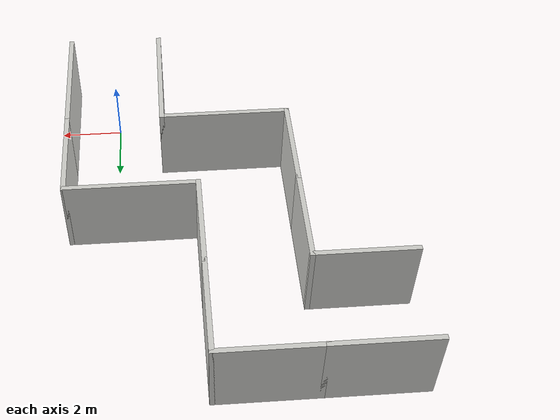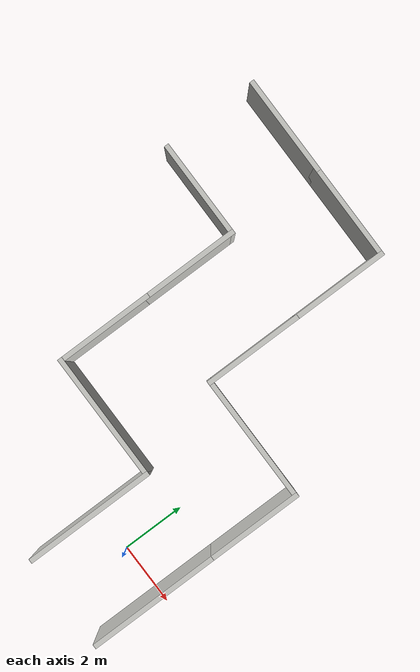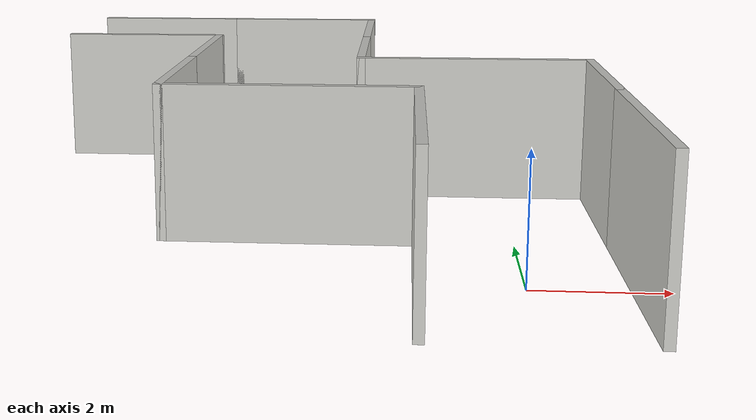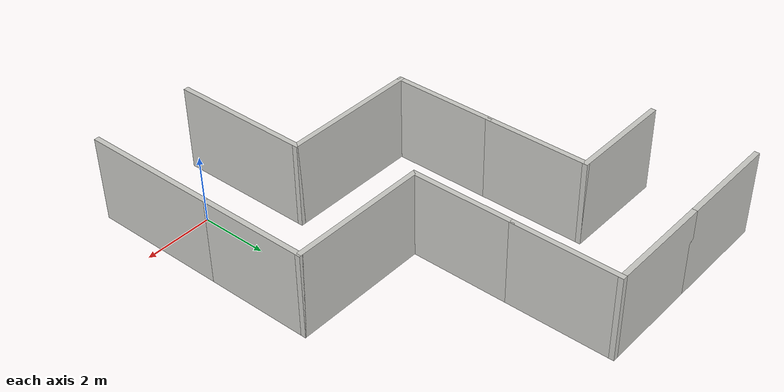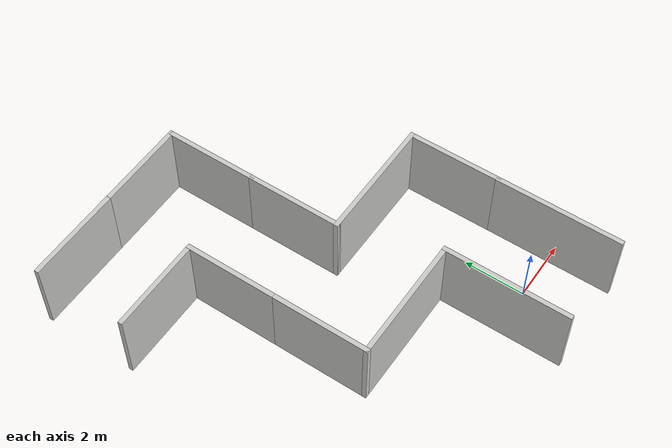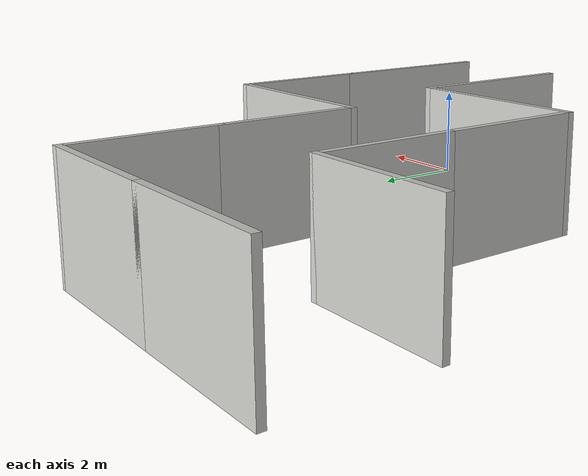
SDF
<?xml version="1.0" ?>
<sdf version="1.5">
  <model name="Bcourse_wall">

    <include>
      <name>w1</name>
      <pose>-1.5 0 0 0 0 1.5708</pose>
      <uri>model://4m_wall</uri>
    </include>
    <include>
      <name>w2</name>
      <pose>1.5 0 0 0 0 1.5708</pose>
      <uri>model://4m_wall</uri>
    </include>
    <include>
      <name>w3</name>
      <pose>-3.5 2 0 0 0 0</pose>
      <uri>model://4m_wall</uri>
    </include>
    <include>
      <name>w4</name>
      <pose>1.5 3.5 0 0 0 1.5708</pose>
      <uri>model://3m_wall</uri>
    </include>
    <include>
      <name>w5</name>
      <pose>-5.5 3.5 0 0 0 1.5708</pose>
      <uri>model://3m_wall</uri>
    </include>
    <include>
      <name>w6</name>
      <pose>-5.5 6.5 0 0 0 1.5708</pose>
      <uri>model://3m_wall</uri>
    </include>
    <include>
      <name>w7</name>
      <pose>-2.5 6.5 0 0 0 1.5708</pose>
      <uri>model://3m_wall</uri>
    </include>
    <include>
      <name>w8</name>
      <pose>-2.5 9.5 0 0 0 1.5708</pose>
      <uri>model://3m_wall</uri>
    </include>
    <include>
      <name>w9</name>
      <pose>-7 11 0 0 0 0</pose>
      <uri>model://3m_wall</uri>
    </include>
    <include>
      <name>w10</name>
      <pose>-4 11 0 0 0 0</pose>
      <uri>model://3m_wall</uri>
    </include>
    <include>
      <name>w11</name>
      <pose>-7 8 0 0 0 0</pose>
      <uri>model://3m_wall</uri>
    </include>
    <include>
      <name>w12</name>
      <pose>-0.5 5 0 0 0 0</pose>
      <uri>model://4m_wall</uri>
    </include>
  </model>
</sdf>

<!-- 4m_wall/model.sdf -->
<sdf version='1.6'>
  <model name='4m_wall'>
    <link name='Wall_0'>
      <collision name='Wall_0_Collision'>
        <geometry>
          <box>
            <size>4.15 0.15 2.5</size>
          </box>
        </geometry>
        <pose frame=''>0 0 1.25 0 -0 0</pose>
      </collision>
      <visual name='Wall_0_Visual'>
        <pose frame=''>0 0 1.25 0 -0 0</pose>
        <geometry>
          <box>
            <size>4.15 0.15 2.5</size>
          </box>
        </geometry>
        <material>
          <script>
            <uri>file://media/materials/scripts/gazebo.material</uri>
            <name>Gazebo/CeilingTiled</name>
          </script>
          <ambient>1 1 1 1</ambient>
        </material>
        <meta>
          <layer>0</layer>
        </meta>
      </visual>
      <pose frame=''>0 0 0 0 -0 0</pose>
    </link>
    <static>1</static>
  </model>
</sdf>

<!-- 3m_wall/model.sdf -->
<sdf version='1.6'>
  <model name='3m_wall'>
    <pose frame=''>1.5 0 0 0 -0 0</pose>
    <link name='Wall_45'>
      <collision name='Wall_45_Collision'>
        <geometry>
          <box>
            <size>3.15 0.15 2.5</size>
          </box>
        </geometry>
        <pose frame=''>0 0 1.25 0 -0 0</pose>
      </collision>
      <visual name='Wall_45_Visual'>
        <pose frame=''>0 0 1.25 0 -0 0</pose>
        <geometry>
          <box>
            <size>3.15 0.15 2.5</size>
          </box>
        </geometry>
        <material>
          <script>
            <uri>file://media/materials/scripts/gazebo.material</uri>
            <name>Gazebo/CeilingTiled</name>
          </script>
          <ambient>1 1 1 1</ambient>
        </material>
        <meta>
          <layer>0</layer>
        </meta>
      </visual>
      <pose frame=''>0 0 0 0 -0 0</pose>
    </link>
    <static>1</static>
  </model>
</sdf>
